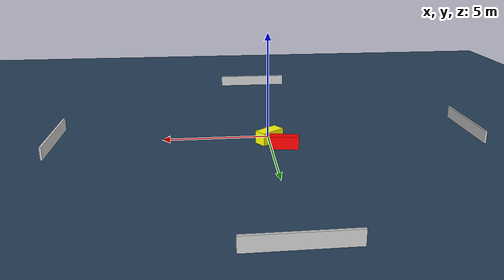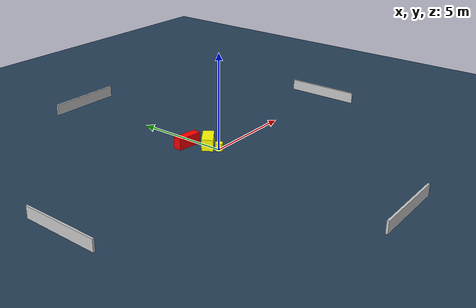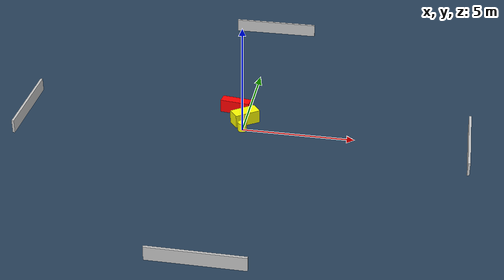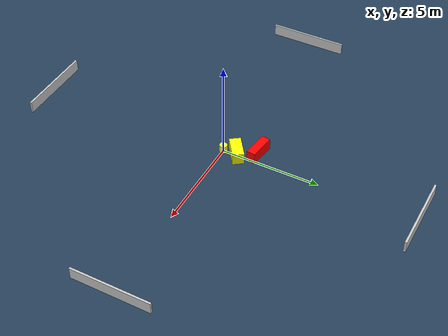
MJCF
<?xml version="1.0" ?>
<mujoco model="generated_environment">
  <option timestep="0.01" integrator="RK4" cone="elliptic"/>
  <default>
    <geom density="1"/>
  </default>
  <asset>
    <texture builtin="gradient" height="3072" name="skybox" rgb1="0.3 0.5 0.7" rgb2="0 0 0" type="skybox" width="512"/>
    <texture builtin="checker" height="300" name="groundplane" rgb1="0.2 0.3 0.4" rgb2="0.1 0.2 0.3" type="2d" width="300"/>
    <material name="groundplane" reflectance="0.2" texrepeat="5 5" texture="groundplane"/>
  </asset>
  <worldbody>
    <light dir="0 0 -1" directional="true" pos="0 0 1.5"/>
    <geom condim="3" friction="0.5 0.005 0.001" material="groundplane" name="floor" pos="0 0 0" size="0 0 0.05" type="plane"/>
    <body name="walls">
      <geom name="wall_1" condim="4" pos="-10.0 0.0 0.3" rgba="0.800000011920929 0.800000011920929 0.800000011920929 1.0" size="0.05 2.0 0.3" type="box"/>
      <geom name="wall_2" condim="4" pos="10.0 0.0 0.3" rgba="0.800000011920929 0.800000011920929 0.800000011920929 1.0" size="0.05 2.0 0.3" type="box"/>
      <geom name="wall_3" condim="4" pos="0.0 -10.0 0.3" rgba="0.800000011920929 0.800000011920929 0.800000011920929 1.0" size="2.0 0.05 0.3" type="box"/>
      <geom name="wall_4" condim="4" pos="0.0 10.0 0.3" rgba="0.800000011920929 0.800000011920929 0.800000011920929 1.0" size="2.0 0.05 0.3" type="box"/>
    </body>
    <body name="robot">
      <joint name="joint_x" type="slide" pos="0 0 0" axis="1 0 0"/>
      <joint name="joint_y" type="slide" pos="0 0 0" axis="0 1 0"/>
      <geom name="robot" type="cylinder" pos="0.0 0.0 0.2" size="0.2 0.2 0.0" mass="5.0" friction="1.0 0.005 0.0001" condim="4" rgba="1.0 1.0 0.0 1.0"/>
    </body>
    <body name="obstacle_1_movable">
      <geom name="obstacle_1_movable" condim="4" pos="-0.0009619819038877836 0.7181917324405683 0.3" euler="0 0 305.8680750391148" friction="0.0 0.005 0.001" rgba="1.0 1.0 0.0 1.0" size="0.2908118836858206 0.5971736069908637 0.3" type="box" mass="0.1"/>
      <joint type="free"/>
    </body>
    <body name="obstacle_2_static">
      <geom name="obstacle_2_static" condim="4" pos="-0.5747464213876042 1.6063858350756404 0.3" euler="0 0 172.23746752600965" friction="0.0 0.005 0.001" rgba="1.0 0.0 0.0 1.0" size="0.6696860882209685 0.2248531872279096 0.3" type="box"/>
    </body>
  </worldbody>
  <actuator>
    <motor name="actuator_x" joint="joint_x" gear="1" ctrlrange="-1 1"/>
    <motor name="actuator_y" joint="joint_y" gear="1" ctrlrange="-1 1"/>
  </actuator>
</mujoco>
